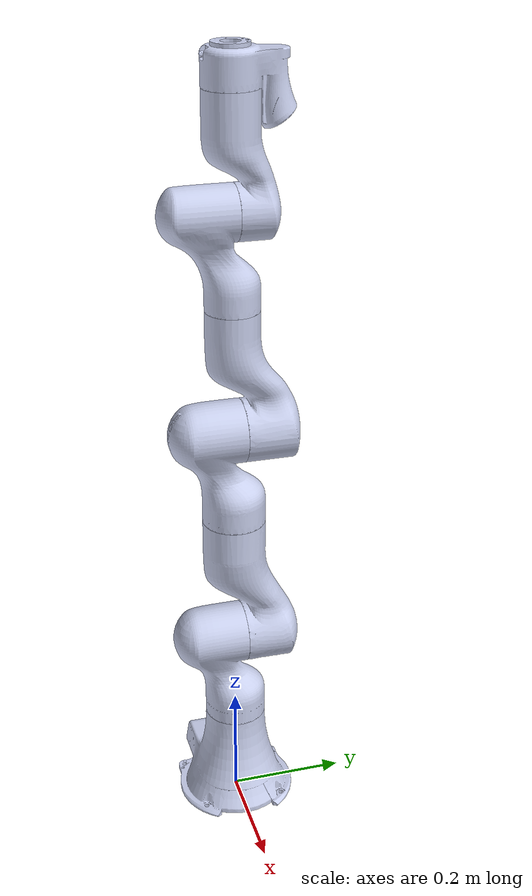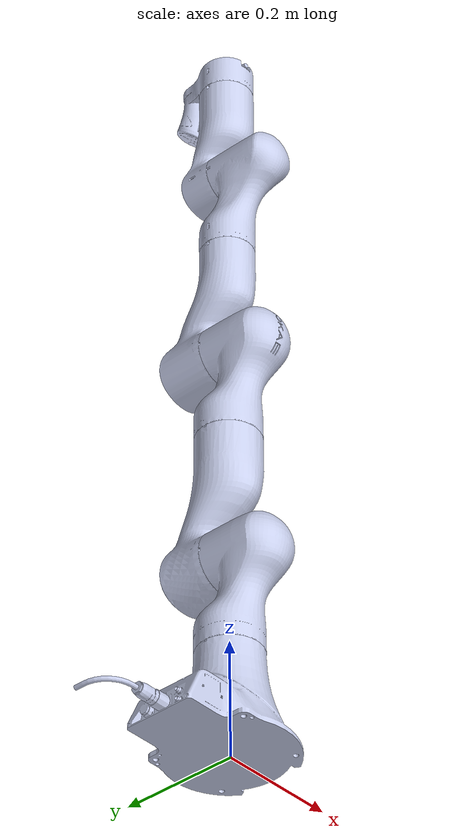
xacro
<?xml version="1.0" encoding="UTF-8"?>
<robot name="xmate_robot" xmlns:xacro="http://wiki.ros.org/xacro" >

  <xacro:include filename="$(find xmate_description)/urdf/xmate.urdf.xacro"/>

  <xacro:arg name="sim_gazebo_classic" default="false" />
  <xacro:arg name="device_mode" default="8" />
  <xacro:arg name="sim_flag" default="false" />
  <xacro:arg name="system_arg" default="--path /home/robot/Work/system/robot_config --iscopy true" />

  <xacro:include filename="$(find xmate_description)/urdf/xmate_ros2_control.xacro"/>
  <xacro:xmate_ros2_control_config
    sim_gazebo_classic="$(arg sim_gazebo_classic)"
    device_mode="$(arg device_mode)"
    sim_flag="$(arg sim_flag)"
    system_arg="$(arg system_arg)"
  />

</robot>

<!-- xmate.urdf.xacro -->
<robot name="xmate_robot" xmlns:xacro="http://ros.org/wiki/xacro">
  <xacro:property name = "pkg_address" value = "file://$(find xmate_description)"/>
  <link name="base_footprint">
      <visual>
          <origin xyz="0 0 0" rpy="0 0 0" />
          <geometry>
              <box size="0.001 0.001 0.001" />
          </geometry>
      </visual>
  </link>

  <joint name="base_footprint_joint" type="fixed">
      <origin xyz="0 0 0.001" rpy="0 0 0" />
      <parent link="base_footprint"/>
      <child link="base_link" />
  </joint>
  <link
    name="base_link">
    <inertial>
      <origin
        xyz="-0.0190878642878959 4.44287082767532E-05 0.0624104395985687"
        rpy="0 0 0" />
      <mass
        value="3.14882981307727" />
      <inertia
        ixx="0.011844482554324"
        ixy="2.92405347400916E-05"
        ixz="-0.00194355041177005"
        iyy="0.0164852496556854"
        iyz="5.29659484045488E-06"
        izz="0.0135747664674373" />
    </inertial>
    <visual>
      <origin
        xyz="0 0 0"
        rpy="0 0 0" />
      <geometry>
        <mesh
          filename="${pkg_address}/meshes/visual/base_link.STL" />
      </geometry>
      <material
        name="">
        <color
          rgba="0.792156862745098 0.819607843137255 0.933333333333333 1" />
      </material>
    </visual>
    <collision>
      <origin
        xyz="0 0 0"
        rpy="0 0 0" />
      <geometry>
        <mesh
          filename="${pkg_address}/meshes/visual/base_link.STL" />
      </geometry>
    </collision>
  </link>
  <link
    name="link1">
    <inertial>
      <origin
        xyz="3.75776496543655E-06 -0.0252734418675507 -0.0534436826389869"
        rpy="0 0 0" />
      <mass
        value="1.80046930093093" />
      <inertia
        ixx="0.00956980817827696"
        ixy="-6.86187842720972E-07"
        ixz="-4.77939852843324E-07"
        iyy="0.00856427639632967"
        iyz="0.0019572725590109"
        izz="0.00330558169450564" />
    </inertial>
    <visual>
      <origin
        xyz="0 0 0"
        rpy="0 0 0" />
      <geometry>
        <mesh
          filename="${pkg_address}/meshes/visual/link1.STL" />
      </geometry>
      <material
        name="">
        <color
          rgba="0.792156862745098 0.819607843137255 0.933333333333333 1" />
      </material>
    </visual>
    <collision>
      <origin
        xyz="0 0 0"
        rpy="0 0 0" />
      <geometry>
        <mesh
          filename="${pkg_address}/meshes/visual/link1.STL" />
      </geometry>
    </collision>
  </link>
  <joint
    name="joint1"
    type="revolute">
    <origin
      xyz="0 0 0.3415"
      rpy="0 0 0" />
    <parent
      link="base_link" />
    <child
      link="link1" />
    <axis
      xyz="0 0 1" />
    <limit
      lower="-2.9671"
      upper="2.9671"
      effort="85"
      velocity="0" />
  </joint>
  <link
    name="link2">
    <inertial>
      <origin
        xyz="-5.90818631893836E-06 -0.0946880344410013 0.0276358977076862"
        rpy="0 0 0" />
      <mass
        value="2.18528055019099" />
      <inertia
        ixx="0.0179611048384866"
        ixy="2.15053083139611E-07"
        ixz="7.21438492051777E-07"
        iyy="0.00446729731923892"
        iyz="-0.00456714437433753"
        izz="0.0162948270439588" />
    </inertial>
    <visual>
      <origin
        xyz="0 0 0"
        rpy="0 0 0" />
      <geometry>
        <mesh
          filename="${pkg_address}/meshes/visual/link2.STL" />
      </geometry>
      <material
        name="">
        <color
          rgba="0.792156862745098 0.819607843137255 0.933333333333333 1" />
      </material>
    </visual>
    <collision>
      <origin
        xyz="0 0 0"
        rpy="0 0 0" />
      <geometry>
        <mesh
          filename="${pkg_address}/meshes/visual/link2.STL" />
      </geometry>
    </collision>
  </link>
  <joint
    name="joint2"
    type="revolute">
    <origin
      xyz="0 0 0"
      rpy="-1.5708 0 0" />
    <parent
      link="link1" />
    <child
      link="link2" />
    <axis
      xyz="0 0 1" />
    <limit
      lower="-2.0944"
      upper="2.0944"
      effort="85"
      velocity="0" />
  </joint>
  <link
    name="link3">
    <inertial>
      <origin
        xyz="2.16568816054606E-06 -0.0250285877752692 -0.0536194526280217"
        rpy="0 0 0" />
      <mass
        value="1.79439914744383" />
      <inertia
        ixx="0.00952181106006989"
        ixy="-6.22714495423591E-07"
        ixz="-6.1128894084889E-07"
        iyy="0.0085458141551332"
        iyz="0.00193686439373285"
        izz="0.0032759628481035" />
    </inertial>
    <visual>
      <origin
        xyz="0 0 0"
        rpy="0 0 0" />
      <geometry>
        <mesh
          filename="${pkg_address}/meshes/visual/link3.STL" />
      </geometry>
      <material
        name="">
        <color
          rgba="0.792156862745098 0.819607843137255 0.933333333333333 1" />
      </material>
    </visual>
    <collision>
      <origin
        xyz="0 0 0"
        rpy="0 0 0" />
      <geometry>
        <mesh
          filename="${pkg_address}/meshes/visual/link3.STL" />
      </geometry>
    </collision>
  </link>
  <joint
    name="joint3"
    type="revolute">
    <origin
      xyz="0 -0.394 0"
      rpy="1.5708 0 0" />
    <parent
      link="link2" />
    <child
      link="link3" />
    <axis
      xyz="0 0 1" />
    <limit
      lower="-2.9671"
      upper="2.9671"
      effort="85"
      velocity="0" />
  </joint>
  <link
    name="link4">
    <inertial>
      <origin
        xyz="2.21985855306493E-06 -0.0758073970252477 0.0327811721602507"
        rpy="0 0 0" />
      <mass
        value="1.79656819645689" />
      <inertia
        ixx="0.0130624358389442"
        ixy="7.3310655032143E-07"
        ixz="1.57222677694707E-07"
        iyy="0.00334822720012112"
        iyz="-0.0034596075696428"
        izz="0.0117335196362426" />
    </inertial>
    <visual>
      <origin
        xyz="0 0 0"
        rpy="0 0 0" />
      <geometry>
        <mesh
          filename="${pkg_address}/meshes/visual/link4.STL" />
      </geometry>
      <material
        name="">
        <color
          rgba="0.792156862745098 0.819607843137255 0.933333333333333 1" />
      </material>
    </visual>
    <collision>
      <origin
        xyz="0 0 0"
        rpy="0 0 0" />
      <geometry>
        <mesh
          filename="${pkg_address}/meshes/visual/link4.STL" />
      </geometry>
    </collision>
  </link>
  <joint
    name="joint4"
    type="revolute">
    <origin
      xyz="0 0 0"
      rpy="-1.5708 0 0" />
    <parent
      link="link3" />
    <child
      link="link4" />
    <axis
      xyz="0 0 1" />
    <limit
      lower="-2.0944"
      upper="2.0944"
      effort="85"
      velocity="0" />
  </joint>
  <link
    name="link5">
    <inertial>
      <origin
        xyz="1.21981613279802E-05 -0.0312760212738299 -0.0457007273791392"
        rpy="0 0 0" />
      <mass
        value="1.29582025094736" />
      <inertia
        ixx="0.00598554443133607"
        ixy="-4.79416720212432E-07"
        ixz="5.48955442157535E-07"
        iyy="0.00489834395926307"
        iyz="0.00152656942938204"
        izz="0.00226750920938523" />
    </inertial>
    <visual>
      <origin
        xyz="0 0 0"
        rpy="0 0 0" />
      <geometry>
        <mesh
          filename="${pkg_address}/meshes/visual/link5.STL" />
      </geometry>
      <material
        name="">
        <color
          rgba="0.792156862745098 0.819607843137255 0.933333333333333 1" />
      </material>
    </visual>
    <collision>
      <origin
        xyz="0 0 0"
        rpy="0 0 0" />
      <geometry>
        <mesh
          filename="${pkg_address}/meshes/visual/link5.STL" />
      </geometry>
    </collision>
  </link>
  <joint
    name="joint5"
    type="revolute">
    <origin
      xyz="0 -0.366 0"
      rpy="1.5708 0 0" />
    <parent
      link="link4" />
    <child
      link="link5" />
    <axis
      xyz="0 0 1" />
    <limit
      lower="-2.9671"
      upper="2.9671"
      effort="36"
      velocity="0" />
  </joint>
  <link
    name="link6">
    <inertial>
      <origin
        xyz="1.20427803352186E-05 -0.0842935496420196 0.0150293848832451"
        rpy="0 0 0" />
      <mass
        value="1.22517411641495" />
      <inertia
        ixx="0.00628411319377034"
        ixy="-3.44725394857607E-07"
        ixz="-1.0526663359284E-07"
        iyy="0.00146492901184975"
        iyz="-0.00128418728953825"
        izz="0.0059858090558361" />
    </inertial>
    <visual>
      <origin
        xyz="0 0 0"
        rpy="0 0 0" />
      <geometry>
        <mesh
          filename="${pkg_address}/meshes/visual/link6.STL" />
      </geometry>
      <material
        name="">
        <color
          rgba="0.792156862745098 0.819607843137255 0.933333333333333 1" />
      </material>
    </visual>
    <collision>
      <origin
        xyz="0 0 0"
        rpy="0 0 0" />
      <geometry>
        <mesh
          filename="${pkg_address}/meshes/visual/link6.STL" />
      </geometry>
    </collision>
  </link>
  <joint
    name="joint6"
    type="revolute">
    <origin
      xyz="0 0 0"
      rpy="-1.5708 0 0" />
    <parent
      link="link5" />
    <child
      link="link6" />
    <axis
      xyz="0 0 1" />
    <limit
      lower="-2.0944"
      upper="2.0944"
      effort="36"
      velocity="0" />
  </joint>
  <link
    name="link7">
    <inertial>
      <origin
        xyz="4.73025266461632E-05 0.0229430859199964 -0.0447568407189354"
        rpy="0 0 0" />
      <mass
        value="0.542741113197497" />
      <inertia
        ixx="0.00116639457832694"
        ixy="-2.22236937889454E-07"
        ixz="-4.20922257638247E-07"
        iyy="0.000638418120517027"
        iyz="0.00028236152146618"
        izz="0.000951964055085044" />
    </inertial>
    <visual>
      <origin
        xyz="0 0 0"
        rpy="0 0 0" />
      <geometry>
        <mesh
          filename="${pkg_address}/meshes/visual/link7.STL" />
      </geometry>
      <material
        name="">
        <color
          rgba="0.792156862745098 0.819607843137255 0.933333333333333 1" />
      </material>
    </visual>
    <collision>
      <origin
        xyz="0 0 0"
        rpy="0 0 0" />
      <geometry>
        <mesh
          filename="${pkg_address}/meshes/visual/link7.STL" />
      </geometry>
    </collision>
  </link>
  <joint
    name="joint7"
    type="revolute">
    <origin
      xyz="0 -0.2503 0"
      rpy="1.5708 0 0" />
    <parent
      link="link6" />
    <child
      link="link7" />
    <axis
      xyz="0 0 1" />
    <limit
      lower="-3.14"
      upper="3.14"
      effort="36"
      velocity="0" />
  </joint>

</robot>
